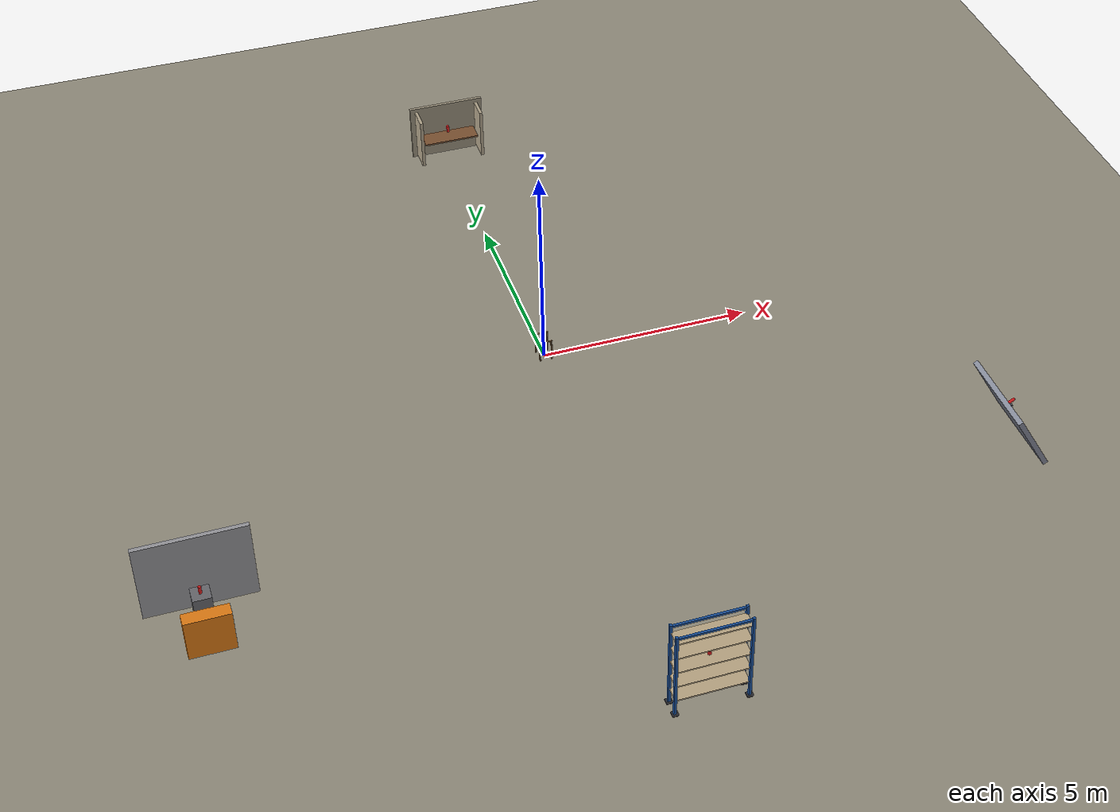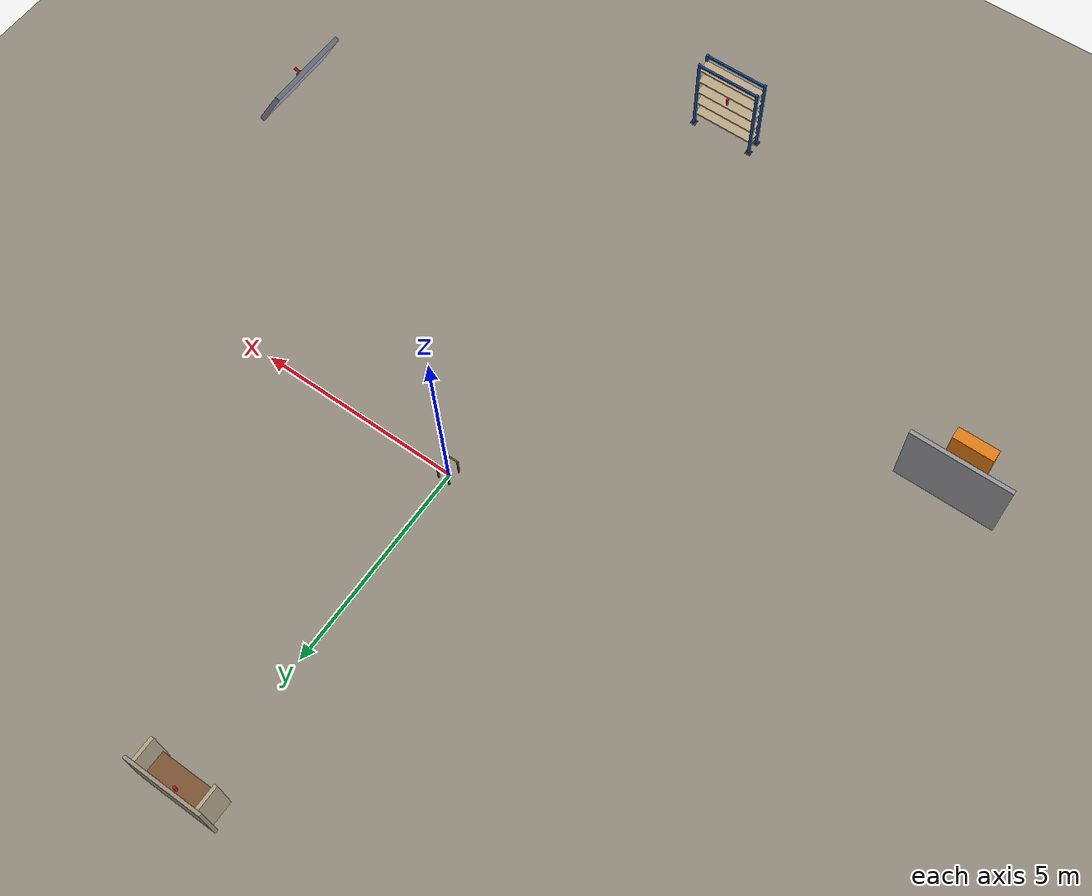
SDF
<?xml version="1.0" encoding="UTF-8"?>
<sdf version="1.9">
  <!-- Four grasping scenarios for UAV + soft continuum-arm whole-body -->
  <!-- optimization experiments (see continuum_arm_whole_body_optimization_ -->
  <!-- final_summary.md). Each scenario is built so the desired end-effector -->
  <!-- task cannot be solved by the UAV alone or the arm alone: the -->
  <!-- optimizer must decide how to split the required motion between UAV -->
  <!-- pose and arm curvature (J_share / J_dex in the summary doc). -->
  <!-- Sizing assumptions used throughout (derived from the hillstar/ -->
  <!-- hillstar_continuum_arm_gripper models, see per-scenario comments -->
  <!-- below for how each is used): -->
  <!--   - UAV rotor-tip span: rotor hubs sit at (+/-0.28, +/-0.28) in -->
  <!--     hillstar_base/model.sdf, prop.stl half-width is 0.178m, so the -->
  <!--     UAV's on-axis (non-diagonal) rotor extent from body center is -->
  <!--     about 0.28+0.178 = 0.458m, and its worst-case (diagonal) extent -->
  <!--     is about 0.396+0.178 = 0.574m (span ~0.92-1.15m depending on -->
  <!--     direction). -->
  <!--   - Arm+gripper reach: hillstar_arm_clearance_stand/model.config -->
  <!--     documents the arm hanging 0.40m from its mount plus a 0.08533m -->
  <!--     gripper offset, i.e. ~0.45-0.48m of reach from the arm mount in -->
  <!--     any bending direction for the single-section constant-curvature -->
  <!--     arm. -->
  <!-- These are first-pass planning numbers, not measured flight margins - -->
  <!-- expect to retune opening/depth dimensions after flying the actual -->
  <!-- vehicle in each scenario. -->
  <world name="continuum_arm_grasping">
    <physics type="ode">
      <max_step_size>0.004</max_step_size>
      <real_time_factor>1.0</real_time_factor>
      <real_time_update_rate>250</real_time_update_rate>
    </physics>
    <plugin name="gz::sim::systems::Physics" filename="gz-sim-physics-system"/>
    <plugin name="gz::sim::systems::UserCommands" filename="gz-sim-user-commands-system"/>
    <plugin name="gz::sim::systems::SceneBroadcaster" filename="gz-sim-scene-broadcaster-system"/>
    <plugin name="gz::sim::systems::Contact" filename="gz-sim-contact-system"/>
    <plugin name="gz::sim::systems::Imu" filename="gz-sim-imu-system"/>
    <plugin name="gz::sim::systems::AirPressure" filename="gz-sim-air-pressure-system"/>
    <plugin name="gz::sim::systems::ApplyLinkWrench" filename="gz-sim-apply-link-wrench-system"/>
    <plugin name="gz::sim::systems::NavSat" filename="gz-sim-navsat-system"/>
    <plugin name="gz::sim::systems::ForceTorque" filename="gz-sim-forcetorque-system"/>
    <plugin name="gz::sim::systems::Sensors" filename="gz-sim-sensors-system">
      <render_engine>ogre2</render_engine>
    </plugin>
    <gui fullscreen="false">
      <!-- 3D scene -->
      <plugin filename="MinimalScene" name="3D View">
        <gz-gui>
          <title>3D View</title>
          <property type="bool" key="showTitleBar">false</property>
          <property type="string" key="state">docked</property>
        </gz-gui>
        <engine>ogre2</engine>
        <scene>scene</scene>
        <ambient_light>0.4 0.4 0.4</ambient_light>
        <background_color>0.75 0.82 0.9</background_color>
        <camera_pose>-6 0 6 0 0.5 0</camera_pose>
        <camera_clip>
          <near>0.25</near>
          <far>25000</far>
        </camera_clip>
      </plugin>
      <!-- Plugins that add functionality to the scene -->
      <plugin filename="EntityContextMenuPlugin" name="Entity context menu">
        <gz-gui>
          <property key="state" type="string">floating</property>
          <property key="width" type="double">5</property>
          <property key="height" type="double">5</property>
          <property key="showTitleBar" type="bool">false</property>
        </gz-gui>
      </plugin>
      <plugin filename="GzSceneManager" name="Scene Manager">
        <gz-gui>
          <property key="resizable" type="bool">false</property>
          <property key="width" type="double">5</property>
          <property key="height" type="double">5</property>
          <property key="state" type="string">floating</property>
          <property key="showTitleBar" type="bool">false</property>
        </gz-gui>
      </plugin>
      <plugin filename="InteractiveViewControl" name="Interactive view control">
        <gz-gui>
          <property key="resizable" type="bool">false</property>
          <property key="width" type="double">5</property>
          <property key="height" type="double">5</property>
          <property key="state" type="string">floating</property>
          <property key="showTitleBar" type="bool">false</property>
        </gz-gui>
      </plugin>
      <plugin filename="CameraTracking" name="Camera Tracking">
        <gz-gui>
          <property key="resizable" type="bool">false</property>
          <property key="width" type="double">5</property>
          <property key="height" type="double">5</property>
          <property key="state" type="string">floating</property>
          <property key="showTitleBar" type="bool">false</property>
        </gz-gui>
      </plugin>
      <plugin filename="MarkerManager" name="Marker manager">
        <gz-gui>
          <property key="resizable" type="bool">false</property>
          <property key="width" type="double">5</property>
          <property key="height" type="double">5</property>
          <property key="state" type="string">floating</property>
          <property key="showTitleBar" type="bool">false</property>
        </gz-gui>
      </plugin>
      <plugin filename="SelectEntities" name="Select Entities">
        <gz-gui>
          <anchors target="Select entities">
            <line own="right" target="right"/>
            <line own="top" target="top"/>
          </anchors>
          <property key="resizable" type="bool">false</property>
          <property key="width" type="double">5</property>
          <property key="height" type="double">5</property>
          <property key="state" type="string">floating</property>
          <property key="showTitleBar" type="bool">false</property>
        </gz-gui>
      </plugin>
      <plugin filename="VisualizationCapabilities" name="Visualization Capabilities">
        <gz-gui>
          <property key="resizable" type="bool">false</property>
          <property key="width" type="double">5</property>
          <property key="height" type="double">5</property>
          <property key="state" type="string">floating</property>
          <property key="showTitleBar" type="bool">false</property>
        </gz-gui>
      </plugin>
      <plugin filename="Spawn" name="Spawn Entities">
        <gz-gui>
          <anchors target="Select entities">
            <line own="right" target="right"/>
            <line own="top" target="top"/>
          </anchors>
          <property key="resizable" type="bool">false</property>
          <property key="width" type="double">5</property>
          <property key="height" type="double">5</property>
          <property key="state" type="string">floating</property>
          <property key="showTitleBar" type="bool">false</property>
        </gz-gui>
      </plugin>
      <plugin name="World control" filename="WorldControl">
        <gz-gui>
          <title>World control</title>
          <property type="bool" key="showTitleBar">0</property>
          <property type="bool" key="resizable">0</property>
          <property type="double" key="height">72</property>
          <property type="double" key="width">121</property>
          <property type="double" key="z">1</property>
          <property type="string" key="state">floating</property>
          <anchors target="3D View">
            <line own="left" target="left"/>
            <line own="bottom" target="bottom"/>
          </anchors>
        </gz-gui>
        <play_pause>1</play_pause>
        <step>1</step>
        <start_paused>1</start_paused>
      </plugin>
      <plugin name="World stats" filename="WorldStats">
        <gz-gui>
          <title>World stats</title>
          <property type="bool" key="showTitleBar">0</property>
          <property type="bool" key="resizable">0</property>
          <property type="double" key="height">110</property>
          <property type="double" key="width">290</property>
          <property type="double" key="z">1</property>
          <property type="string" key="state">floating</property>
          <anchors target="3D View">
            <line own="right" target="right"/>
            <line own="bottom" target="bottom"/>
          </anchors>
        </gz-gui>
        <sim_time>1</sim_time>
        <real_time>1</real_time>
        <real_time_factor>1</real_time_factor>
        <iterations>1</iterations>
      </plugin>
      <plugin name="Entity tree" filename="EntityTree"/>
    </gui>
    <gravity>0 0 -9.8</gravity>
    <magnetic_field>6e-06 2.3e-05 -4.2e-05</magnetic_field>
    <atmosphere type="adiabatic"/>
    <scene>
      <grid>false</grid>
      <ambient>0.45 0.45 0.45 1</ambient>
      <background>0.75 0.82 0.9 1</background>
      <shadows>true</shadows>
    </scene>
    <model name="ground_plane">
      <static>true</static>
      <link name="link">
        <collision name="collision">
          <geometry>
            <plane>
              <normal>0 0 1</normal>
              <size>1 1</size>
            </plane>
          </geometry>
          <surface>
            <friction>
              <ode/>
            </friction>
            <bounce/>
            <contact/>
          </surface>
        </collision>
        <visual name="visual">
          <geometry>
            <plane>
              <normal>0 0 1</normal>
              <size>100 100</size>
            </plane>
          </geometry>
          <material>
            <ambient>0.58 0.56 0.5 1</ambient>
            <diffuse>0.58 0.56 0.5 1</diffuse>
            <specular>0.3 0.3 0.3 1</specular>
          </material>
        </visual>
        <pose>0 0 0 0 -0 0</pose>
        <inertial>
          <pose>0 0 0 0 -0 0</pose>
          <mass>1</mass>
          <inertia>
            <ixx>1</ixx>
            <ixy>0</ixy>
            <ixz>0</ixz>
            <iyy>1</iyy>
            <iyz>0</iyz>
            <izz>1</izz>
          </inertia>
        </inertial>
        <enable_wind>false</enable_wind>
      </link>
      <pose>0 0 0 0 -0 0</pose>
      <self_collide>false</self_collide>
    </model>
    <!-- Bench stand at the vehicle's default spawn point (world origin), -->
    <!-- same purpose/derivation as in slope_wall.sdf: raises the vehicle's -->
    <!-- landing skids clear of the ground so hillstar_continuum_arm_gripper's -->
    <!-- own soft arm can settle into a true, unforced neutral hang instead -->
    <!-- of buckling against a flat floor. Scenarios are placed well away -->
    <!-- from here so the vehicle has open room to fly out to any of them. -->
    <include>
      <uri>model://hillstar_arm_clearance_stand</uri>
      <pose>0 0 0 0 0 0</pose>
    </include>

    <!-- Scenario 1: shelf / recessed alcove, centered at (0, 8).           -->
    <!-- Approach direction is +Y (mouth faces south/-Y at y=8.0, back wall -->
    <!-- at y=8.55). Opening is 1.5m wide - comfortably wider than the -->
    <!-- UAV's ~0.92-1.15m rotor span so the vehicle can advance into the -->
    <!-- mouth - but the 0.55m depth to the can means covering the last -->
    <!-- ~0.3-0.45m to the can is cheaper/safer with the arm than by -->
    <!-- pushing the UAV body deep between the side walls, which is exactly -->
    <!-- the workload-sharing trade-off (J_share) the optimizer should -->
    <!-- resolve differently across mission phases (free flight -> approach -->
    <!-- -> contact). -->
    <model name="scenario_1_side_wall_left">
      <static>true</static>
      <pose>-0.79 8.275 0.95 0 0 0</pose>
      <link name="wall_link">
        <collision name="collision">
          <geometry>
            <box><size>0.08 0.55 1.3</size></box>
          </geometry>
          <surface>
            <friction>
              <ode><mu>1.0</mu><mu2>1.0</mu2></ode>
            </friction>
          </surface>
        </collision>
        <visual name="visual">
          <geometry>
            <box><size>0.08 0.55 1.3</size></box>
          </geometry>
          <material>
            <ambient>0.68 0.63 0.53 1</ambient>
            <diffuse>0.7 0.65 0.55 1</diffuse>
            <specular>0.15 0.15 0.15 1</specular>
          </material>
        </visual>
      </link>
    </model>
    <model name="scenario_1_side_wall_right">
      <static>true</static>
      <pose>0.79 8.275 0.95 0 0 0</pose>
      <link name="wall_link">
        <collision name="collision">
          <geometry>
            <box><size>0.08 0.55 1.3</size></box>
          </geometry>
          <surface>
            <friction>
              <ode><mu>1.0</mu><mu2>1.0</mu2></ode>
            </friction>
          </surface>
        </collision>
        <visual name="visual">
          <geometry>
            <box><size>0.08 0.55 1.3</size></box>
          </geometry>
          <material>
            <ambient>0.68 0.63 0.53 1</ambient>
            <diffuse>0.7 0.65 0.55 1</diffuse>
            <specular>0.15 0.15 0.15 1</specular>
          </material>
        </visual>
      </link>
    </model>
    <model name="scenario_1_back_wall">
      <static>true</static>
      <pose>0 8.59 0.975 0 0 0</pose>
      <link name="wall_link">
        <collision name="collision">
          <geometry>
            <box><size>1.9 0.08 1.45</size></box>
          </geometry>
          <surface>
            <friction>
              <ode><mu>1.0</mu><mu2>1.0</mu2></ode>
            </friction>
          </surface>
        </collision>
        <visual name="visual">
          <geometry>
            <box><size>1.9 0.08 1.45</size></box>
          </geometry>
          <material>
            <ambient>0.6 0.56 0.48 1</ambient>
            <diffuse>0.62 0.58 0.5 1</diffuse>
            <specular>0.15 0.15 0.15 1</specular>
          </material>
        </visual>
      </link>
    </model>
    <model name="scenario_1_shelf_floor">
      <static>true</static>
      <pose>0 8.29 0.88 0 0 0</pose>
      <link name="floor_link">
        <collision name="collision">
          <geometry>
            <box><size>1.4 0.48 0.04</size></box>
          </geometry>
          <surface>
            <friction>
              <ode><mu>1.2</mu><mu2>1.2</mu2></ode>
            </friction>
          </surface>
        </collision>
        <visual name="visual">
          <geometry>
            <box><size>1.4 0.48 0.04</size></box>
          </geometry>
          <material>
            <ambient>0.45 0.3 0.18 1</ambient>
            <diffuse>0.5 0.33 0.2 1</diffuse>
            <specular>0.2 0.2 0.2 1</specular>
          </material>
        </visual>
      </link>
    </model>
    <!-- Can sits near the back of the shelf (0.09m clear of the back -->
    <!-- wall) so the full 0.46m mouth-to-can depth is relevant to reach. -->
    <model name="scenario_1_can">
      <pose>0 8.46 0.99 0 0 0</pose>
      <link name="object_link">
        <inertial>
          <mass>0.1</mass>
          <inertia>
            <ixx>0.00013</ixx><iyy>0.00013</iyy><izz>0.00005</izz>
            <ixy>0</ixy><ixz>0</ixz><iyz>0</iyz>
          </inertia>
        </inertial>
        <collision name="collision">
          <geometry>
            <cylinder><radius>0.033</radius><length>0.18</length></cylinder>
          </geometry>
          <surface>
            <friction>
              <ode><mu>1.5</mu><mu2>1.5</mu2></ode>
            </friction>
          </surface>
        </collision>
        <visual name="visual">
          <geometry>
            <cylinder><radius>0.033</radius><length>0.18</length></cylinder>
          </geometry>
          <material><ambient>0.8 0.1 0.1 1</ambient></material>
        </visual>
        <visual name="tag">
          <pose>0 0 0.061 0 0 0</pose>
          <geometry>
            <cylinder><radius>0.028</radius><length>0.002</length></cylinder>
          </geometry>
          <material>
            <ambient>1 1 1 1</ambient>
            <diffuse>1 1 1 1</diffuse>
            <specular>0.1 0.1 0.1 1</specular>
            <pbr>
              <metal>
                <albedo_map>model://tag_textures/materials/textures/tag_1_can.png</albedo_map>
                <metalness>0.0</metalness>
                <roughness>1.0</roughness>
              </metal>
            </pbr>
          </material>
        </visual>
      </link>
    </model>

    <!-- Scenario 2: 60-degree inclined wall, centered at (9, -6).          -->
    <!-- Built the same way as slope_wall.sdf's ramp - a flat panel pitched -->
    <!-- about Y - but starting from a panel whose face normal is +Z -->
    <!-- (horizontal) at zero pitch, so incline_from_horizontal == pose -->
    <!-- pitch directly: pitch = 1.0471976 rad = 60deg gives a surface -->
    <!-- normal of (sin60, 0, cos60) = (0.866, 0, 0.5), i.e. exactly 60deg -->
    <!-- off vertical/horizontal (verified numerically, see task notes). -->
    <!-- The can is given the *same* pitch as the panel so its cylinder -->
    <!-- axis is parallel to the surface normal, i.e. it "stands" on the -->
    <!-- slope. At 60deg, gravity's in-plane component (mg*sin60=0.866mg) -->
    <!-- exceeds what mu=1.5 friction alone reliably holds (needs -->
    <!-- mu > tan(60deg) = 1.73), so this scenario raises friction to 2.0 -->
    <!-- on both surfaces AND adds a small physical lip immediately -->
    <!-- downhill of the can as a mechanical stop - belt and suspenders -->
    <!-- against the can sliding off during settling. -->
    <model name="scenario_2_slope">
      <static>true</static>
      <pose>9 -6 0.7228 0 1.0471976 0</pose>
      <link name="slope_link">
        <collision name="collision">
          <geometry>
            <box><size>1.6 2.2 0.12</size></box>
          </geometry>
          <surface>
            <friction>
              <ode><mu>2.0</mu><mu2>2.0</mu2></ode>
            </friction>
          </surface>
        </collision>
        <visual name="visual">
          <geometry>
            <box><size>1.6 2.2 0.12</size></box>
          </geometry>
          <material>
            <ambient>0.48 0.5 0.55 1</ambient>
            <diffuse>0.52 0.54 0.6 1</diffuse>
            <specular>0.2 0.2 0.22 1</specular>
          </material>
        </visual>
      </link>
    </model>
    <!-- Small retaining lip immediately downhill of the can, fixed to the -->
    <!-- slope surface (same pitch), acting as a mechanical stop. -->
    <model name="scenario_2_lip">
      <static>true</static>
      <pose>8.9569 -6 0.9774 0 1.0471976 0</pose>
      <link name="lip_link">
        <collision name="collision">
          <geometry>
            <box><size>0.05 0.15 0.06</size></box>
          </geometry>
          <surface>
            <friction>
              <ode><mu>2.0</mu><mu2>2.0</mu2></ode>
            </friction>
          </surface>
        </collision>
        <visual name="visual">
          <geometry>
            <box><size>0.05 0.15 0.06</size></box>
          </geometry>
          <material>
            <ambient>0.3 0.31 0.34 1</ambient>
            <diffuse>0.32 0.33 0.36 1</diffuse>
            <specular>0.2 0.2 0.2 1</specular>
          </material>
        </visual>
      </link>
    </model>
    <model name="scenario_2_can">
      <pose>8.9799 -6 1.0576 0 1.0471976 0</pose>
      <link name="object_link">
        <inertial>
          <mass>0.1</mass>
          <inertia>
            <ixx>0.00013</ixx><iyy>0.00013</iyy><izz>0.00005</izz>
            <ixy>0</ixy><ixz>0</ixz><iyz>0</iyz>
          </inertia>
        </inertial>
        <collision name="collision">
          <geometry>
            <cylinder><radius>0.033</radius><length>0.18</length></cylinder>
          </geometry>
          <surface>
            <friction>
              <ode><mu>2.0</mu><mu2>2.0</mu2></ode>
            </friction>
          </surface>
        </collision>
        <visual name="visual">
          <geometry>
            <cylinder><radius>0.033</radius><length>0.18</length></cylinder>
          </geometry>
          <material><ambient>0.8 0.1 0.1 1</ambient></material>
        </visual>
        <visual name="tag">
          <pose>0 0 0.061 0 0 0</pose>
          <geometry>
            <cylinder><radius>0.028</radius><length>0.002</length></cylinder>
          </geometry>
          <material>
            <ambient>1 1 1 1</ambient>
            <diffuse>1 1 1 1</diffuse>
            <specular>0.1 0.1 0.1 1</specular>
            <pbr>
              <metal>
                <albedo_map>model://tag_textures/materials/textures/tag_1_can.png</albedo_map>
                <metalness>0.0</metalness>
                <roughness>1.0</roughness>
              </metal>
            </pbr>
          </material>
        </visual>
      </link>
    </model>

    <!-- Scenario 3: can between a back wall and a front obstacle,          -->
    <!-- centered at (-9, -6). Approach direction is +Y: UAV approaches -->
    <!-- from the south (y < -6.75), passes the front obstacle -->
    <!-- (y in [-6.75,-6.45]), and the can sits on a pedestal just in front -->
    <!-- of the back wall (y=-5.9, wall inner face at y=-5.55). There are -->
    <!-- deliberately no side walls: the obstacle only blocks the direct -->
    <!-- line to the can, leaving open space to either side (>0.7m past -->
    <!-- the 1.0m-wide obstacle on a 2.4m-wide backdrop) so the UAV can -->
    <!-- reposition laterally around it, AND a 0.35m gap between the -->
    <!-- obstacle and the pedestal so the arm can reach through/around -->
    <!-- while the UAV stays further back - both strategies stay viable, -->
    <!-- which is the point of this scenario. -->
    <model name="scenario_3_back_wall">
      <static>true</static>
      <pose>-9 -5.5 1.15 0 0 0</pose>
      <link name="wall_link">
        <collision name="collision">
          <geometry>
            <box><size>2.4 0.1 1.9</size></box>
          </geometry>
          <surface>
            <friction>
              <ode><mu>1.0</mu><mu2>1.0</mu2></ode>
            </friction>
          </surface>
        </collision>
        <visual name="visual">
          <geometry>
            <box><size>2.4 0.1 1.9</size></box>
          </geometry>
          <material>
            <ambient>0.58 0.58 0.6 1</ambient>
            <diffuse>0.6 0.6 0.62 1</diffuse>
            <specular>0.15 0.15 0.15 1</specular>
          </material>
        </visual>
      </link>
    </model>
    <model name="scenario_3_pedestal">
      <static>true</static>
      <pose>-9 -5.9 0.45 0 0 0</pose>
      <link name="pedestal_link">
        <collision name="collision">
          <geometry>
            <box><size>0.4 0.4 0.9</size></box>
          </geometry>
          <surface>
            <friction>
              <ode><mu>1.2</mu><mu2>1.2</mu2></ode>
            </friction>
          </surface>
        </collision>
        <visual name="visual">
          <geometry>
            <box><size>0.4 0.4 0.9</size></box>
          </geometry>
          <material>
            <ambient>0.4 0.4 0.42 1</ambient>
            <diffuse>0.42 0.42 0.44 1</diffuse>
            <specular>0.15 0.15 0.15 1</specular>
          </material>
        </visual>
      </link>
    </model>
    <!-- Front obstacle: simple box, bright/contrasting so it reads -->
    <!-- unambiguously as "the obstacle" against the neutral wall/pedestal. -->
    <model name="scenario_3_front_obstacle">
      <static>true</static>
      <pose>-9 -6.6 0.5 0 0 0</pose>
      <link name="obstacle_link">
        <collision name="collision">
          <geometry>
            <box><size>1.0 0.3 1.0</size></box>
          </geometry>
          <surface>
            <friction>
              <ode><mu>1.0</mu><mu2>1.0</mu2></ode>
            </friction>
          </surface>
        </collision>
        <visual name="visual">
          <geometry>
            <box><size>1.0 0.3 1.0</size></box>
          </geometry>
          <material>
            <ambient>0.85 0.45 0.05 1</ambient>
            <diffuse>0.9 0.5 0.08 1</diffuse>
            <specular>0.2 0.2 0.2 1</specular>
          </material>
        </visual>
      </link>
    </model>
    <model name="scenario_3_can">
      <pose>-9 -5.9 0.99 0 0 0</pose>
      <link name="object_link">
        <inertial>
          <mass>0.1</mass>
          <inertia>
            <ixx>0.00013</ixx><iyy>0.00013</iyy><izz>0.00005</izz>
            <ixy>0</ixy><ixz>0</ixz><iyz>0</iyz>
          </inertia>
        </inertial>
        <collision name="collision">
          <geometry>
            <cylinder><radius>0.033</radius><length>0.18</length></cylinder>
          </geometry>
          <surface>
            <friction>
              <ode><mu>1.5</mu><mu2>1.5</mu2></ode>
            </friction>
          </surface>
        </collision>
        <visual name="visual">
          <geometry>
            <cylinder><radius>0.033</radius><length>0.18</length></cylinder>
          </geometry>
          <material><ambient>0.8 0.1 0.1 1</ambient></material>
        </visual>
        <visual name="tag">
          <pose>0 0 0.061 0 0 0</pose>
          <geometry>
            <cylinder><radius>0.028</radius><length>0.002</length></cylinder>
          </geometry>
          <material>
            <ambient>1 1 1 1</ambient>
            <diffuse>1 1 1 1</diffuse>
            <specular>0.1 0.1 0.1 1</specular>
            <pbr>
              <metal>
                <albedo_map>model://tag_textures/materials/textures/tag_1_can.png</albedo_map>
                <metalness>0.0</metalness>
                <roughness>1.0</roughness>
              </metal>
            </pbr>
          </material>
        </visual>
      </link>
    </model>

    <!-- Scenario 4: tall warehouse shelf, centered at (0, -11).            -->
    <!-- A single-bay pallet-rack-style unit: 4 steel posts (0.06x0.06m -->
    <!-- section, 2.2m tall) at the corners of a 1.56m-wide x 0.4m-deep -->
    <!-- footprint, carrying 5 decking planks whose top surfaces are -->
    <!-- exactly 0.4m apart (z=0.4,0.8,1.2,1.6,2.0), plus top front/back -->
    <!-- rails and foot plates for a finished look. It is open-backed and -->
    <!-- open-fronted like real pallet racking (no back panel), approached -->
    <!-- from the front (+Y side, y > -11) heading -Y. -->
    <!-- The can sits on the middle (3rd of 5) shelf, z_top=1.2, toward the -->
    <!-- front edge of that shelf's 0.34m depth. The clear internal height -->
    <!-- of that cubby (shelf-3 top to shelf-4 bottom) is 1.585-1.2=0.385m, -->
    <!-- i.e. essentially the full 0.4m pitch minus one plank's 0.03m -->
    <!-- thickness - deliberately tight against the ~0.35-0.45m estimated -->
    <!-- UAV body height, so the vehicle is expected to hover in front of -->
    <!-- the rack (not inside a cubby) and let the arm curve up/in to the -->
    <!-- can, exercising altitude selection and vertical collision -->
    <!-- avoidance against the shelves directly above and below the target. -->
    <model name="scenario_4_post_front_left">
      <static>true</static>
      <pose>-0.78 -10.83 1.1 0 0 0</pose>
      <link name="post_link">
        <collision name="collision">
          <geometry><box><size>0.06 0.06 2.2</size></box></geometry>
          <surface><friction><ode><mu>1.0</mu><mu2>1.0</mu2></ode></friction></surface>
        </collision>
        <visual name="visual">
          <geometry><box><size>0.06 0.06 2.2</size></box></geometry>
          <material>
            <ambient>0.08 0.28 0.55 1</ambient>
            <diffuse>0.1 0.32 0.62 1</diffuse>
            <specular>0.3 0.3 0.35 1</specular>
          </material>
        </visual>
      </link>
    </model>
    <model name="scenario_4_post_front_right">
      <static>true</static>
      <pose>0.78 -10.83 1.1 0 0 0</pose>
      <link name="post_link">
        <collision name="collision">
          <geometry><box><size>0.06 0.06 2.2</size></box></geometry>
          <surface><friction><ode><mu>1.0</mu><mu2>1.0</mu2></ode></friction></surface>
        </collision>
        <visual name="visual">
          <geometry><box><size>0.06 0.06 2.2</size></box></geometry>
          <material>
            <ambient>0.08 0.28 0.55 1</ambient>
            <diffuse>0.1 0.32 0.62 1</diffuse>
            <specular>0.3 0.3 0.35 1</specular>
          </material>
        </visual>
      </link>
    </model>
    <model name="scenario_4_post_back_left">
      <static>true</static>
      <pose>-0.78 -11.17 1.1 0 0 0</pose>
      <link name="post_link">
        <collision name="collision">
          <geometry><box><size>0.06 0.06 2.2</size></box></geometry>
          <surface><friction><ode><mu>1.0</mu><mu2>1.0</mu2></ode></friction></surface>
        </collision>
        <visual name="visual">
          <geometry><box><size>0.06 0.06 2.2</size></box></geometry>
          <material>
            <ambient>0.08 0.28 0.55 1</ambient>
            <diffuse>0.1 0.32 0.62 1</diffuse>
            <specular>0.3 0.3 0.35 1</specular>
          </material>
        </visual>
      </link>
    </model>
    <model name="scenario_4_post_back_right">
      <static>true</static>
      <pose>0.78 -11.17 1.1 0 0 0</pose>
      <link name="post_link">
        <collision name="collision">
          <geometry><box><size>0.06 0.06 2.2</size></box></geometry>
          <surface><friction><ode><mu>1.0</mu><mu2>1.0</mu2></ode></friction></surface>
        </collision>
        <visual name="visual">
          <geometry><box><size>0.06 0.06 2.2</size></box></geometry>
          <material>
            <ambient>0.08 0.28 0.55 1</ambient>
            <diffuse>0.1 0.32 0.62 1</diffuse>
            <specular>0.3 0.3 0.35 1</specular>
          </material>
        </visual>
      </link>
    </model>
    <!-- Foot plates: small welded base plates under each post, purely -->
    <!-- cosmetic (grounds the rack visually like a real one). -->
    <model name="scenario_4_foot_front_left">
      <static>true</static>
      <pose>-0.78 -10.83 0.01 0 0 0</pose>
      <link name="foot_link">
        <collision name="collision">
          <geometry><box><size>0.14 0.14 0.02</size></box></geometry>
          <surface><friction><ode><mu>1.0</mu><mu2>1.0</mu2></ode></friction></surface>
        </collision>
        <visual name="visual">
          <geometry><box><size>0.14 0.14 0.02</size></box></geometry>
          <material>
            <ambient>0.15 0.15 0.17 1</ambient>
            <diffuse>0.18 0.18 0.2 1</diffuse>
            <specular>0.3 0.3 0.3 1</specular>
          </material>
        </visual>
      </link>
    </model>
    <model name="scenario_4_foot_front_right">
      <static>true</static>
      <pose>0.78 -10.83 0.01 0 0 0</pose>
      <link name="foot_link">
        <collision name="collision">
          <geometry><box><size>0.14 0.14 0.02</size></box></geometry>
          <surface><friction><ode><mu>1.0</mu><mu2>1.0</mu2></ode></friction></surface>
        </collision>
        <visual name="visual">
          <geometry><box><size>0.14 0.14 0.02</size></box></geometry>
          <material>
            <ambient>0.15 0.15 0.17 1</ambient>
            <diffuse>0.18 0.18 0.2 1</diffuse>
            <specular>0.3 0.3 0.3 1</specular>
          </material>
        </visual>
      </link>
    </model>
    <model name="scenario_4_foot_back_left">
      <static>true</static>
      <pose>-0.78 -11.17 0.01 0 0 0</pose>
      <link name="foot_link">
        <collision name="collision">
          <geometry><box><size>0.14 0.14 0.02</size></box></geometry>
          <surface><friction><ode><mu>1.0</mu><mu2>1.0</mu2></ode></friction></surface>
        </collision>
        <visual name="visual">
          <geometry><box><size>0.14 0.14 0.02</size></box></geometry>
          <material>
            <ambient>0.15 0.15 0.17 1</ambient>
            <diffuse>0.18 0.18 0.2 1</diffuse>
            <specular>0.3 0.3 0.3 1</specular>
          </material>
        </visual>
      </link>
    </model>
    <model name="scenario_4_foot_back_right">
      <static>true</static>
      <pose>0.78 -11.17 0.01 0 0 0</pose>
      <link name="foot_link">
        <collision name="collision">
          <geometry><box><size>0.14 0.14 0.02</size></box></geometry>
          <surface><friction><ode><mu>1.0</mu><mu2>1.0</mu2></ode></friction></surface>
        </collision>
        <visual name="visual">
          <geometry><box><size>0.14 0.14 0.02</size></box></geometry>
          <material>
            <ambient>0.15 0.15 0.17 1</ambient>
            <diffuse>0.18 0.18 0.2 1</diffuse>
            <specular>0.3 0.3 0.3 1</specular>
          </material>
        </visual>
      </link>
    </model>
    <!-- 5 decking planks, top surfaces at z = 0.4, 0.8, 1.2, 1.6, 2.0m -->
    <!-- (exactly 0.4m pitch). -->
    <model name="scenario_4_shelf_1">
      <static>true</static>
      <pose>0 -11 0.385 0 0 0</pose>
      <link name="shelf_link">
        <collision name="collision">
          <geometry><box><size>1.56 0.34 0.03</size></box></geometry>
          <surface><friction><ode><mu>1.2</mu><mu2>1.2</mu2></ode></friction></surface>
        </collision>
        <visual name="visual">
          <geometry><box><size>1.56 0.34 0.03</size></box></geometry>
          <material>
            <ambient>0.72 0.64 0.5 1</ambient>
            <diffuse>0.75 0.67 0.53 1</diffuse>
            <specular>0.15 0.15 0.15 1</specular>
          </material>
        </visual>
      </link>
    </model>
    <model name="scenario_4_shelf_2">
      <static>true</static>
      <pose>0 -11 0.785 0 0 0</pose>
      <link name="shelf_link">
        <collision name="collision">
          <geometry><box><size>1.56 0.34 0.03</size></box></geometry>
          <surface><friction><ode><mu>1.2</mu><mu2>1.2</mu2></ode></friction></surface>
        </collision>
        <visual name="visual">
          <geometry><box><size>1.56 0.34 0.03</size></box></geometry>
          <material>
            <ambient>0.72 0.64 0.5 1</ambient>
            <diffuse>0.75 0.67 0.53 1</diffuse>
            <specular>0.15 0.15 0.15 1</specular>
          </material>
        </visual>
      </link>
    </model>
    <!-- Middle (3rd of 5) shelf - carries the can. -->
    <model name="scenario_4_shelf_3">
      <static>true</static>
      <pose>0 -11 1.185 0 0 0</pose>
      <link name="shelf_link">
        <collision name="collision">
          <geometry><box><size>1.56 0.34 0.03</size></box></geometry>
          <surface><friction><ode><mu>1.2</mu><mu2>1.2</mu2></ode></friction></surface>
        </collision>
        <visual name="visual">
          <geometry><box><size>1.56 0.34 0.03</size></box></geometry>
          <material>
            <ambient>0.72 0.64 0.5 1</ambient>
            <diffuse>0.75 0.67 0.53 1</diffuse>
            <specular>0.15 0.15 0.15 1</specular>
          </material>
        </visual>
      </link>
    </model>
    <model name="scenario_4_shelf_4">
      <static>true</static>
      <pose>0 -11 1.585 0 0 0</pose>
      <link name="shelf_link">
        <collision name="collision">
          <geometry><box><size>1.56 0.34 0.03</size></box></geometry>
          <surface><friction><ode><mu>1.2</mu><mu2>1.2</mu2></ode></friction></surface>
        </collision>
        <visual name="visual">
          <geometry><box><size>1.56 0.34 0.03</size></box></geometry>
          <material>
            <ambient>0.72 0.64 0.5 1</ambient>
            <diffuse>0.75 0.67 0.53 1</diffuse>
            <specular>0.15 0.15 0.15 1</specular>
          </material>
        </visual>
      </link>
    </model>
    <model name="scenario_4_shelf_5">
      <static>true</static>
      <pose>0 -11 1.985 0 0 0</pose>
      <link name="shelf_link">
        <collision name="collision">
          <geometry><box><size>1.56 0.34 0.03</size></box></geometry>
          <surface><friction><ode><mu>1.2</mu><mu2>1.2</mu2></ode></friction></surface>
        </collision>
        <visual name="visual">
          <geometry><box><size>1.56 0.34 0.03</size></box></geometry>
          <material>
            <ambient>0.72 0.64 0.5 1</ambient>
            <diffuse>0.75 0.67 0.53 1</diffuse>
            <specular>0.15 0.15 0.15 1</specular>
          </material>
        </visual>
      </link>
    </model>
    <!-- Top front/back rails capping the frame, just above the top shelf. -->
    <model name="scenario_4_top_rail_front">
      <static>true</static>
      <pose>0 -10.83 2.15 0 0 0</pose>
      <link name="rail_link">
        <collision name="collision">
          <geometry><box><size>1.56 0.05 0.05</size></box></geometry>
          <surface><friction><ode><mu>1.0</mu><mu2>1.0</mu2></ode></friction></surface>
        </collision>
        <visual name="visual">
          <geometry><box><size>1.56 0.05 0.05</size></box></geometry>
          <material>
            <ambient>0.08 0.28 0.55 1</ambient>
            <diffuse>0.1 0.32 0.62 1</diffuse>
            <specular>0.3 0.3 0.35 1</specular>
          </material>
        </visual>
      </link>
    </model>
    <model name="scenario_4_top_rail_back">
      <static>true</static>
      <pose>0 -11.17 2.15 0 0 0</pose>
      <link name="rail_link">
        <collision name="collision">
          <geometry><box><size>1.56 0.05 0.05</size></box></geometry>
          <surface><friction><ode><mu>1.0</mu><mu2>1.0</mu2></ode></friction></surface>
        </collision>
        <visual name="visual">
          <geometry><box><size>1.56 0.05 0.05</size></box></geometry>
          <material>
            <ambient>0.08 0.28 0.55 1</ambient>
            <diffuse>0.1 0.32 0.62 1</diffuse>
            <specular>0.3 0.3 0.35 1</specular>
          </material>
        </visual>
      </link>
    </model>
    <!-- Can on the middle shelf (shelf_3, top at z=1.2), toward the front -->
    <!-- edge of its 0.34m depth so it is reachable without the arm having -->
    <!-- to travel the full depth of the cubby. -->
    <model name="scenario_4_can">
      <pose>0 -10.92 1.29 0 0 0</pose>
      <link name="object_link">
        <inertial>
          <mass>0.1</mass>
          <inertia>
            <ixx>0.00013</ixx><iyy>0.00013</iyy><izz>0.00005</izz>
            <ixy>0</ixy><ixz>0</ixz><iyz>0</iyz>
          </inertia>
        </inertial>
        <collision name="collision">
          <geometry>
            <cylinder><radius>0.033</radius><length>0.18</length></cylinder>
          </geometry>
          <surface>
            <friction>
              <ode><mu>1.5</mu><mu2>1.5</mu2></ode>
            </friction>
          </surface>
        </collision>
        <visual name="visual">
          <geometry>
            <cylinder><radius>0.033</radius><length>0.18</length></cylinder>
          </geometry>
          <material><ambient>0.8 0.1 0.1 1</ambient></material>
        </visual>
        <visual name="tag">
          <pose>0 0 0.061 0 0 0</pose>
          <geometry>
            <cylinder><radius>0.028</radius><length>0.002</length></cylinder>
          </geometry>
          <material>
            <ambient>1 1 1 1</ambient>
            <diffuse>1 1 1 1</diffuse>
            <specular>0.1 0.1 0.1 1</specular>
            <pbr>
              <metal>
                <albedo_map>model://tag_textures/materials/textures/tag_1_can.png</albedo_map>
                <metalness>0.0</metalness>
                <roughness>1.0</roughness>
              </metal>
            </pbr>
          </material>
        </visual>
      </link>
    </model>

    <light name="sunUTC" type="directional">
      <pose>0 0 500 0 -0 0</pose>
      <cast_shadows>true</cast_shadows>
      <intensity>1</intensity>
      <direction>0.001 0.625 -0.78</direction>
      <diffuse>0.904 0.904 0.904 1</diffuse>
      <specular>0.271 0.271 0.271 1</specular>
      <attenuation>
        <range>2000</range>
        <linear>0</linear>
        <constant>1</constant>
        <quadratic>0</quadratic>
      </attenuation>
      <spot>
        <inner_angle>0</inner_angle>
        <outer_angle>0</outer_angle>
        <falloff>0</falloff>
      </spot>
    </light>
    <spherical_coordinates>
      <surface_model>EARTH_WGS84</surface_model>
      <world_frame_orientation>ENU</world_frame_orientation>
      <latitude_deg>47.397971057728974</latitude_deg>
      <longitude_deg> 8.546163739800146</longitude_deg>
      <elevation>0</elevation>
    </spherical_coordinates>
    <plugin filename="gz-sim-pose-publisher-system" name="gz::sim::systems::PosePublisher">
      <publish_link_pose>true</publish_link_pose>
      <publish_model_pose>true</publish_model_pose>
      <use_pose_vector_msg>true</use_pose_vector_msg>
      <static_publisher>true</static_publisher>
      <static_update_frequency>1</static_update_frequency>
    </plugin>
  </world>
</sdf>

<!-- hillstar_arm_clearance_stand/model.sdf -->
<sdf version="1.9">
  <model name="hillstar_arm_clearance_stand">
    <static>true</static>
    <link name="stand_link">
      <pose>0 0 0 0 0 0</pose>

      <!-- Left rail: supports hillstar_base's collision_leg_left
           (skid centered at y=-0.1715). Top surface at z=0.55. -->
      <collision name="collision_rail_left">
        <pose>0 -0.1715 0.54 0 0 0</pose>
        <geometry>
          <box>
            <size>0.32 0.03 0.02</size>
          </box>
        </geometry>
      </collision>
      <visual name="visual_rail_left">
        <pose>0 -0.1715 0.54 0 0 0</pose>
        <geometry>
          <box>
            <size>0.32 0.03 0.02</size>
          </box>
        </geometry>
        <material>
          <ambient>0.35 0.25 0.15 1</ambient>
          <diffuse>0.55 0.4 0.25 1</diffuse>
          <specular>0.2 0.2 0.2 1</specular>
        </material>
      </visual>

      <!-- Right rail: supports collision_leg_right (skid at y=+0.1715). -->
      <collision name="collision_rail_right">
        <pose>0 0.1715 0.54 0 0 0</pose>
        <geometry>
          <box>
            <size>0.32 0.03 0.02</size>
          </box>
        </geometry>
      </collision>
      <visual name="visual_rail_right">
        <pose>0 0.1715 0.54 0 0 0</pose>
        <geometry>
          <box>
            <size>0.32 0.03 0.02</size>
          </box>
        </geometry>
        <material>
          <ambient>0.35 0.25 0.15 1</ambient>
          <diffuse>0.55 0.4 0.25 1</diffuse>
          <specular>0.2 0.2 0.2 1</specular>
        </material>
      </visual>

      <collision name="collision_leg_fl">
        <pose>0.14 -0.1715 0.265 0 0 0</pose>
        <geometry>
          <box>
            <size>0.03 0.03 0.53</size>
          </box>
        </geometry>
      </collision>
      <visual name="visual_leg_fl">
        <pose>0.14 -0.1715 0.265 0 0 0</pose>
        <geometry>
          <box>
            <size>0.03 0.03 0.53</size>
          </box>
        </geometry>
        <material>
          <ambient>0.25 0.18 0.1 1</ambient>
          <diffuse>0.4 0.3 0.18 1</diffuse>
        </material>
      </visual>

      <collision name="collision_leg_bl">
        <pose>-0.14 -0.1715 0.265 0 0 0</pose>
        <geometry>
          <box>
            <size>0.03 0.03 0.53</size>
          </box>
        </geometry>
      </collision>
      <visual name="visual_leg_bl">
        <pose>-0.14 -0.1715 0.265 0 0 0</pose>
        <geometry>
          <box>
            <size>0.03 0.03 0.53</size>
          </box>
        </geometry>
        <material>
          <ambient>0.25 0.18 0.1 1</ambient>
          <diffuse>0.4 0.3 0.18 1</diffuse>
        </material>
      </visual>

      <collision name="collision_leg_fr">
        <pose>0.14 0.1715 0.265 0 0 0</pose>
        <geometry>
          <box>
            <size>0.03 0.03 0.53</size>
          </box>
        </geometry>
      </collision>
      <visual name="visual_leg_fr">
        <pose>0.14 0.1715 0.265 0 0 0</pose>
        <geometry>
          <box>
            <size>0.03 0.03 0.53</size>
          </box>
        </geometry>
        <material>
          <ambient>0.25 0.18 0.1 1</ambient>
          <diffuse>0.4 0.3 0.18 1</diffuse>
        </material>
      </visual>

      <collision name="collision_leg_br">
        <pose>-0.14 0.1715 0.265 0 0 0</pose>
        <geometry>
          <box>
            <size>0.03 0.03 0.53</size>
          </box>
        </geometry>
      </collision>
      <visual name="visual_leg_br">
        <pose>-0.14 0.1715 0.265 0 0 0</pose>
        <geometry>
          <box>
            <size>0.03 0.03 0.53</size>
          </box>
        </geometry>
        <material>
          <ambient>0.25 0.18 0.1 1</ambient>
          <diffuse>0.4 0.3 0.18 1</diffuse>
        </material>
      </visual>
    </link>
  </model>
</sdf>
